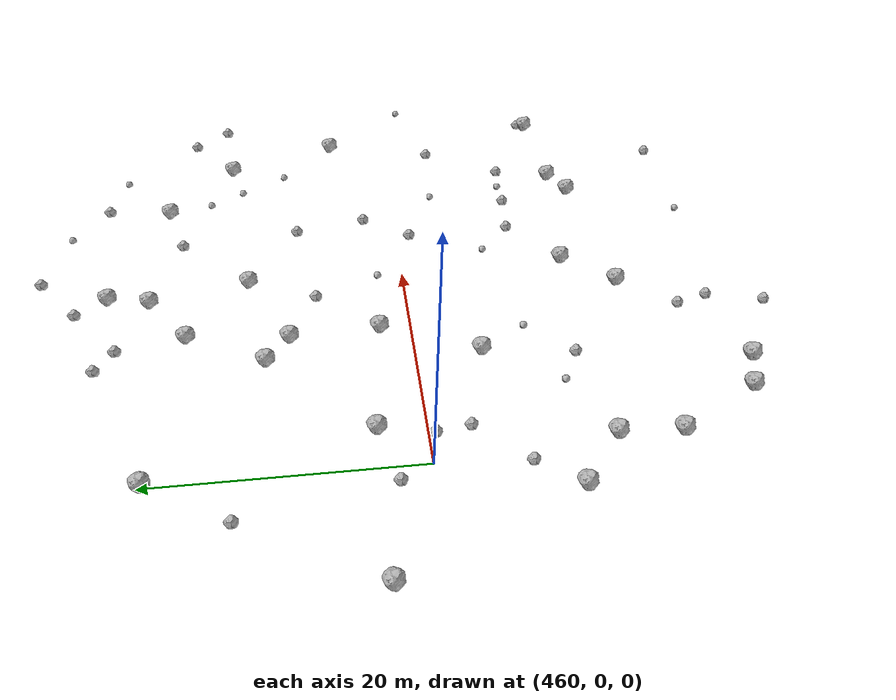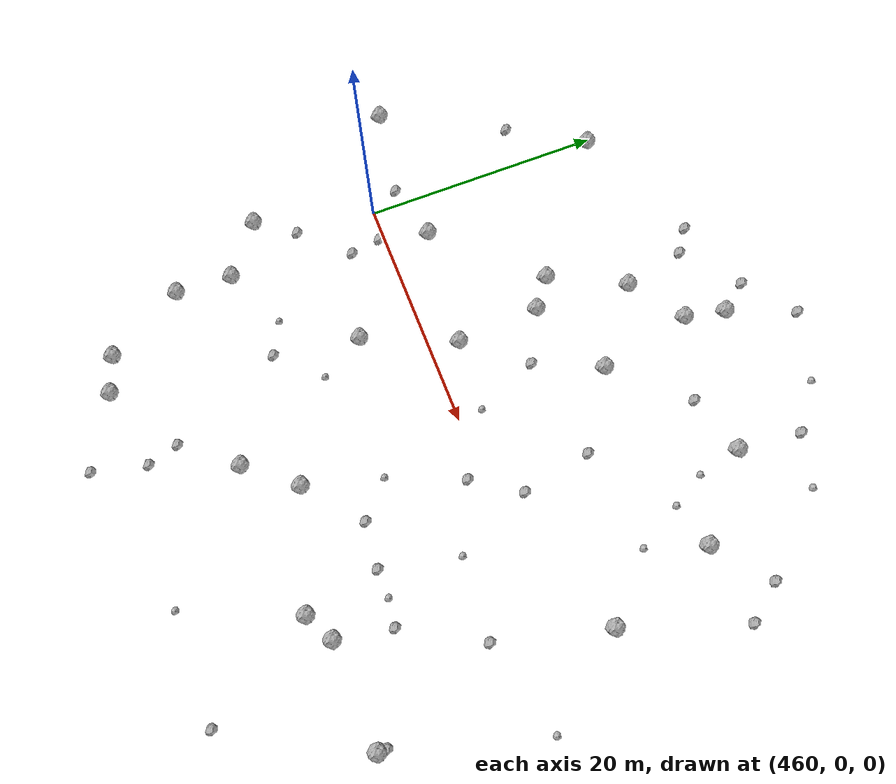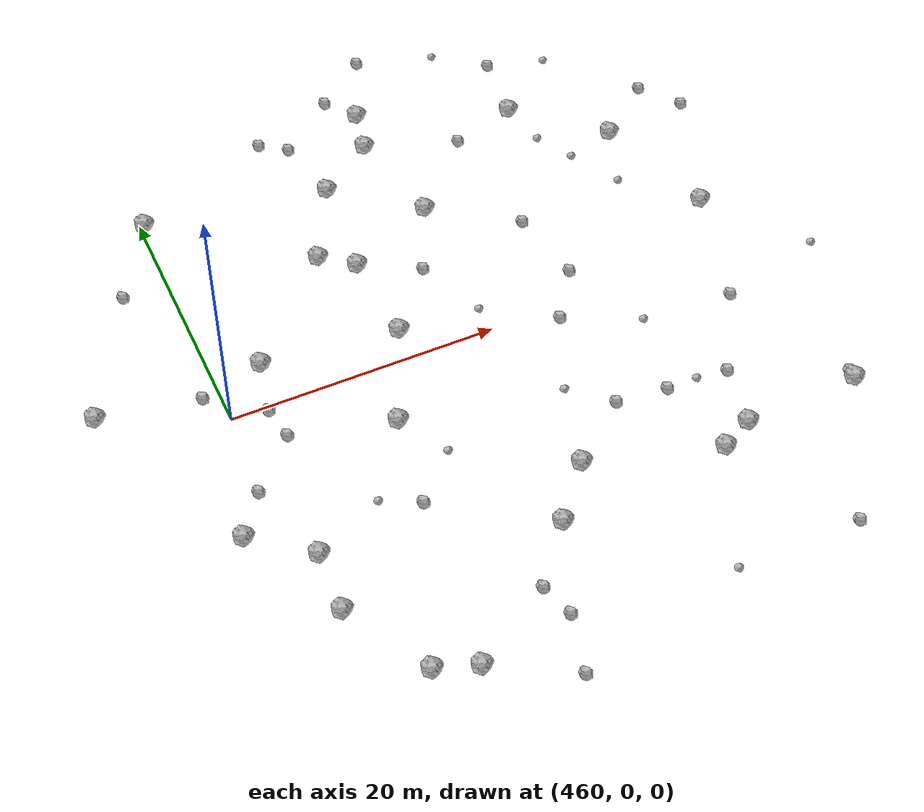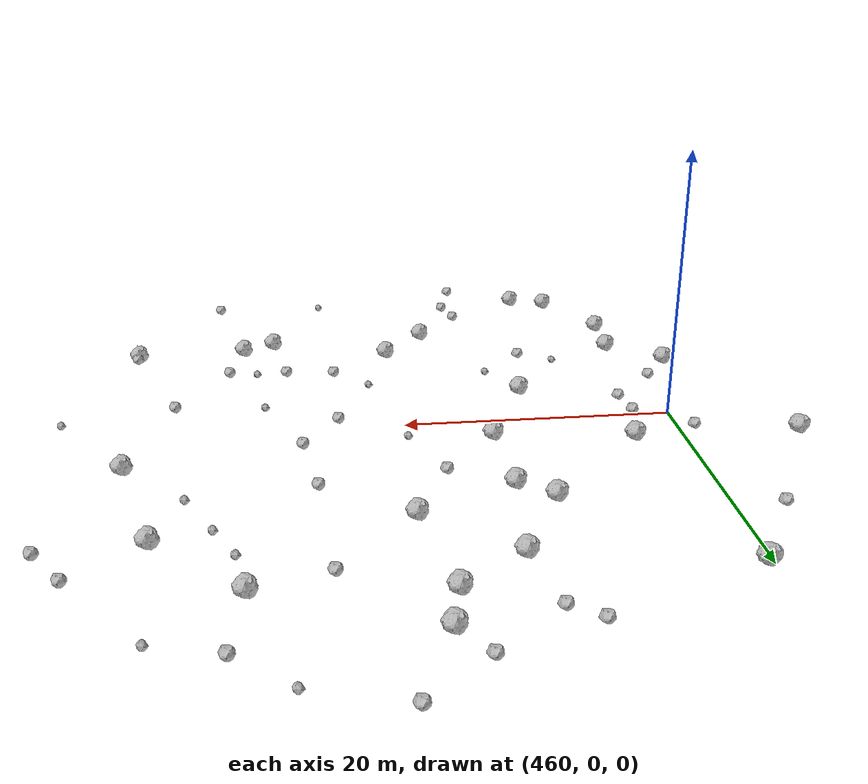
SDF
<sdf version="1.6">
 <world name="default">
  <include><uri>model://sun</uri></include>
  <model name="rock1_12_3">
   <include><uri>model://rock1</uri><pose>492.762331851565 -15.142623943297973 0.5 0 0 0</pose></include>
  </model>
  <model name="rock1_12_4">
   <include><uri>model://rock1</uri><pose>473.41894171892955 9.495556052990004 0.5 0 0 0</pose></include>
  </model>
  <model name="rock1_12_5">
   <include><uri>model://rock1</uri><pose>473.8095792577686 2.460030645343288 0.5 0 0 0</pose></include>
  </model>
  <model name="rock1_12_6">
   <include><uri>model://rock1</uri><pose>490.4217416465881 19.729182587739096 0.5 0 0 0</pose></include>
  </model>
  <model name="rock1_12_7">
   <include><uri>model://rock1</uri><pose>501.52096569222806 -14.739458230147841 0.5 0 0 0</pose></include>
  </model>
  <model name="rock1_12_8">
   <include><uri>model://rock1</uri><pose>490.31290737451997 -16.411570620721438 0.5 0 0 0</pose></include>
  </model>
  <model name="rock1_12_9">
   <include><uri>model://rock1</uri><pose>460.35702026672897 19.732508913479407 0.5 0 0 0</pose></include>
  </model>
  <model name="rock1_12_10">
   <include><uri>model://rock1</uri><pose>461.19840716253225 -17.935741096555912 0.5 0 0 0</pose></include>
  </model>
  <model name="rock1_12_11">
   <include><uri>model://rock1</uri><pose>467.782928472329 -25.45087659214156 0.5 0 0 0</pose></include>
  </model>
  <model name="rock1_12_12">
   <include><uri>model://rock1</uri><pose>463.6132117649748 3.5928946093408527 0.5 0 0 0</pose></include>
  </model>
  <model name="rock1_12_13">
   <include><uri>model://rock1</uri><pose>480.65115603250615 -13.57135493081742 0.5 0 0 0</pose></include>
  </model>
  <model name="rock1_12_14">
   <include><uri>model://rock1</uri><pose>470.5791950431398 -5.075543752569779 0.5 0 0 0</pose></include>
  </model>
  <model name="rock1_12_15">
   <include><uri>model://rock1</uri><pose>496.5531856069297 14.266696274358488 0.5 0 0 0</pose></include>
  </model>
  <model name="rock1_12_16">
   <include><uri>model://rock1</uri><pose>471.0551132730376 11.354924026312425 0.5 0 0 0</pose></include>
  </model>
  <model name="rock1_12_17">
   <include><uri>model://rock1</uri><pose>474.1831129825767 17.480685130132613 0.5 0 0 0</pose></include>
  </model>
  <model name="rock1_12_18">
   <include><uri>model://rock1</uri><pose>464.76022078907266 -24.39061794982304 0.5 0 0 0</pose></include>
  </model>
  <model name="rock1_12_19">
   <include><uri>model://rock1</uri><pose>499.648451257188 4.9883772367368096 0.5 0 0 0</pose></include>
  </model>
  <model name="rock1_12_20">
   <include><uri>model://rock1</uri><pose>461.44256425644016 -13.228255443854152 0.5 0 0 0</pose></include>
  </model>
  <model name="rock1_12_21">
   <include><uri>model://rock1</uri><pose>480.2232276980026 12.68519531077095 0.5 0 0 0</pose></include>
  </model>
  <model name="rock1_12_22">
   <include><uri>model://rock1</uri><pose>478.5557660604197 20.617866913648122 0.5 0 0 0</pose></include>
  </model>
  <model name="rock1_12_23">
   <include><uri>model://rock1</uri><pose>477.3577157455234 -17.479370663303065 0.5 0 0 0</pose></include>
  </model>
  <model name="rock1_12_24">
   <include><uri>model://rock1</uri><pose>479.278107096502 23.994969999129808 0.5 0 0 0</pose></include>
  </model>
  <model name="rock1_12_25">
   <include><uri>model://rock1</uri><pose>457.3267247311291 -9.946458740968097 0.5 0 0 0</pose></include>
  </model>
  <model name="rock1_12_26">
   <include><uri>model://rock1</uri><pose>451.33997265794267 3.66641686724666 0.5 0 0 0</pose></include>
  </model>
  <model name="rock2_12_0">
   <include><uri>model://rock2</uri><pose>477.48469470505285 26.417889074991123 0.3 0 0 0</pose></include>
  </model>
  <model name="rock2_12_1">
   <include><uri>model://rock2</uri><pose>493.5950066376422 -10.44862398251231 0.3 0 0 0</pose></include>
  </model>
  <model name="rock2_12_2">
   <include><uri>model://rock2</uri><pose>485.4044135630063 18.322128230452876 0.3 0 0 0</pose></include>
  </model>
  <model name="rock2_12_3">
   <include><uri>model://rock2</uri><pose>462.62524525282936 -0.4799363389912372 0.3 0 0 0</pose></include>
  </model>
  <model name="rock2_12_4">
   <include><uri>model://rock2</uri><pose>485.1266994782156 -9.775393274786506 0.3 0 0 0</pose></include>
  </model>
  <model name="rock2_12_5">
   <include><uri>model://rock2</uri><pose>471.1034986461664 24.16412525337722 0.3 0 0 0</pose></include>
  </model>
  <model name="rock2_12_6">
   <include><uri>model://rock2</uri><pose>500.8615459135532 17.84064745912515 0.3 0 0 0</pose></include>
  </model>
  <model name="rock2_12_7">
   <include><uri>model://rock2</uri><pose>490.9806535217152 25.10800348031541 0.3 0 0 0</pose></include>
  </model>
  <model name="rock2_12_8">
   <include><uri>model://rock2</uri><pose>477.7018764765376 7.267327109128082 0.3 0 0 0</pose></include>
  </model>
  <model name="rock2_12_9">
   <include><uri>model://rock2</uri><pose>487.4654804892055 2.666165757987919 0.3 0 0 0</pose></include>
  </model>
  <model name="rock2_12_10">
   <include><uri>model://rock2</uri><pose>459.512364891999 -6.785135046439898 0.3 0 0 0</pose></include>
  </model>
  <model name="rock2_12_11">
   <include><uri>model://rock2</uri><pose>473.86605080392576 -21.62842846894869 0.3 0 0 0</pose></include>
  </model>
  <model name="rock2_12_12">
   <include><uri>model://rock2</uri><pose>486.3710689917723 8.545663758982755 0.3 0 0 0</pose></include>
  </model>
  <model name="rock2_12_13">
   <include><uri>model://rock2</uri><pose>469.3919696051219 -12.1505235375155 0.3 0 0 0</pose></include>
  </model>
  <model name="rock2_12_14">
   <include><uri>model://rock2</uri><pose>474.6339066199338 -24.20905348977309 0.3 0 0 0</pose></include>
  </model>
  <model name="rock2_12_15">
   <include><uri>model://rock2</uri><pose>501.520744737797 -14.00800525145025 0.3 0 0 0</pose></include>
  </model>
  <model name="rock2_12_16">
   <include><uri>model://rock2</uri><pose>484.88177797017596 -1.1431950235732167 0.3 0 0 0</pose></include>
  </model>
  <model name="rock2_12_17">
   <include><uri>model://rock2</uri><pose>495.59452188053723 -25.48452793465207 0.3 0 0 0</pose></include>
  </model>
  <model name="rock2_12_18">
   <include><uri>model://rock2</uri><pose>473.5523216605631 -28.663006812476496 0.3 0 0 0</pose></include>
  </model>
  <model name="rock2_12_19">
   <include><uri>model://rock2</uri><pose>503.1117171863541 14.935070479914643 0.3 0 0 0</pose></include>
  </model>
  <model name="rock2_12_20">
   <include><uri>model://rock2</uri><pose>458.7700284924727 2.4102493430179592 0.3 0 0 0</pose></include>
  </model>
  <model name="rock2_12_21">
   <include><uri>model://rock2</uri><pose>463.0306376681716 -3.0588773495354573 0.3 0 0 0</pose></include>
  </model>
  <model name="rock2_12_22">
   <include><uri>model://rock2</uri><pose>481.5030349740165 29.60850871979123 0.3 0 0 0</pose></include>
  </model>
  <model name="rock2_12_23">
   <include><uri>model://rock2</uri><pose>456.60528969951207 13.603449923743668 0.3 0 0 0</pose></include>
  </model>
  <model name="rock2_12_24">
   <include><uri>model://rock2</uri><pose>497.21018087373335 -4.198923828266775 0.3 0 0 0</pose></include>
  </model>
  <model name="rock2_12_25">
   <include><uri>model://rock2</uri><pose>488.9667722484669 -10.166080498034809 0.3 0 0 0</pose></include>
  </model>
  <model name="rock2_12_26">
   <include><uri>model://rock2</uri><pose>473.0353657452637 22.78976696211309 0.3 0 0 0</pose></include>
  </model>
  <model name="rock3_12_0">
   <include><uri>model://rock3</uri><pose>486.34169293075206 -25.56591709077778 0.2 0 0 0</pose></include>
  </model>
  <model name="rock3_12_1">
   <include><uri>model://rock3</uri><pose>495.34520685535193 23.888799610617255 0.2 0 0 0</pose></include>
  </model>
  <model name="rock3_12_2">
   <include><uri>model://rock3</uri><pose>479.88626123615126 2.027906614632606 0.2 0 0 0</pose></include>
  </model>
  <model name="rock3_12_3">
   <include><uri>model://rock3</uri><pose>466.66265788771955 -10.78546044115518 0.2 0 0 0</pose></include>
  </model>
  <model name="rock3_12_4">
   <include><uri>model://rock3</uri><pose>505.1612463020478 -2.1276499281599612 0.2 0 0 0</pose></include>
  </model>
  <model name="rock3_12_5">
   <include><uri>model://rock3</uri><pose>490.3742388496544 -3.7403053632719825 0.2 0 0 0</pose></include>
  </model>
  <model name="rock3_12_6">
   <include><uri>model://rock3</uri><pose>491.31350656169906 -10.163562370401959 0.2 0 0 0</pose></include>
  </model>
  <model name="rock3_12_7">
   <include><uri>model://rock3</uri><pose>494.89482100123814 9.487084980513444 0.2 0 0 0</pose></include>
  </model>
  <model name="rock3_12_8">
   <include><uri>model://rock3</uri><pose>492.7635724837762 13.27845018254174 0.2 0 0 0</pose></include>
  </model>
  <model name="rock3_12_9">
   <include><uri>model://rock3</uri><pose>487.3258291325932 27.902553406699994 0.2 0 0 0</pose></include>
  </model>
  <model name="rock3_12_10">
   <include><uri>model://rock3</uri><pose>491.1818538090597 16.090495845321435 0.2 0 0 0</pose></include>
  </model>
  <model name="rock3_12_11">
   <include><uri>model://rock3</uri><pose>472.68132481393974 -8.82813501534062 0.2 0 0 0</pose></include>
  </model>
  <model name="rock3_12_12">
   <include><uri>model://rock3</uri><pose>482.3441779654784 -7.2309504922785415 0.2 0 0 0</pose></include>
  </model>
 </world>
</sdf>
